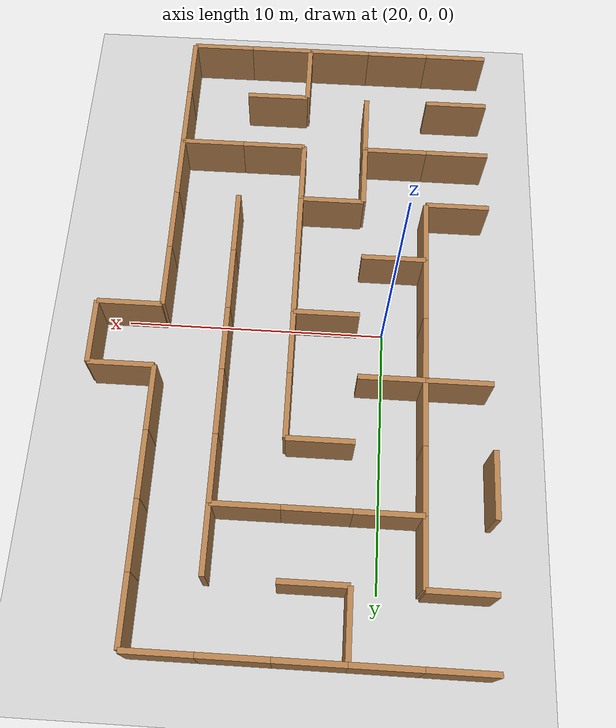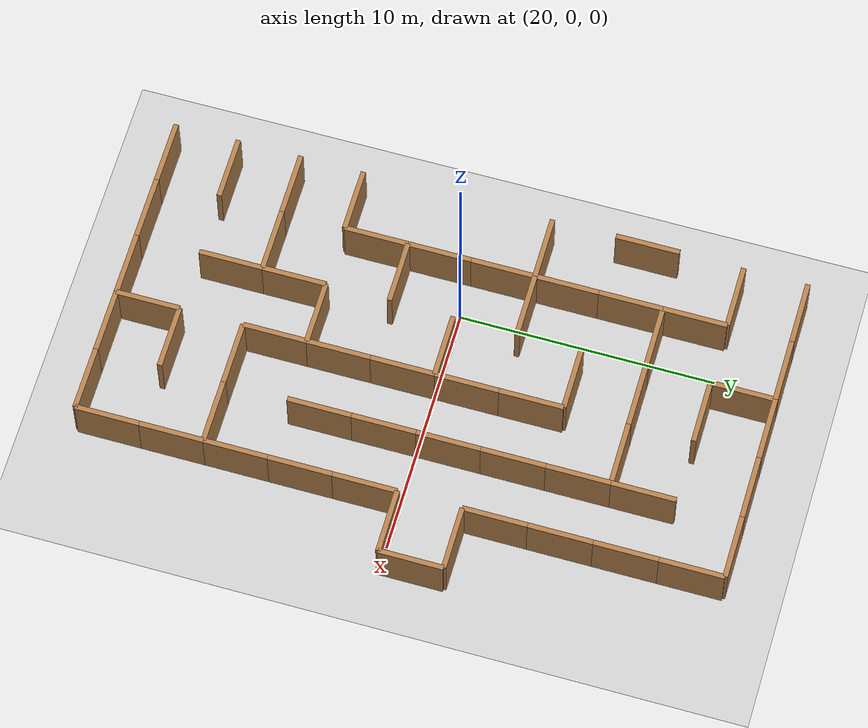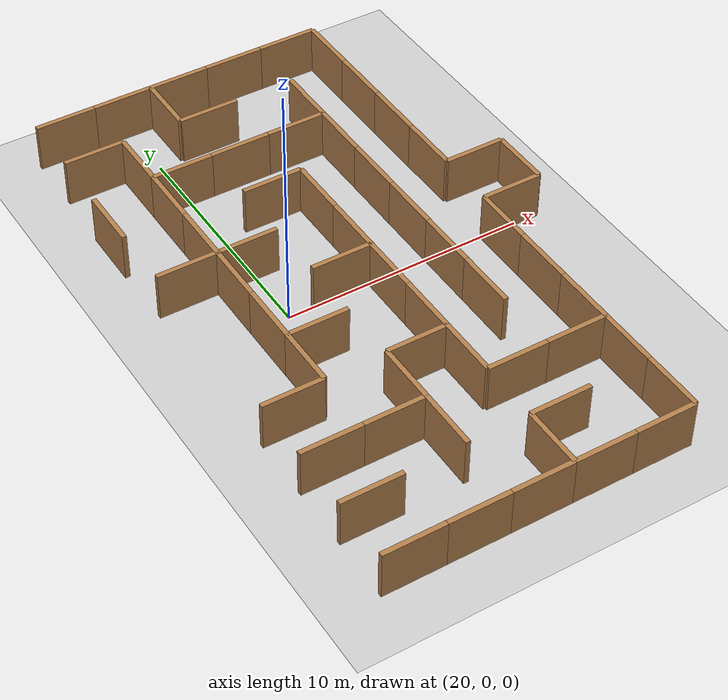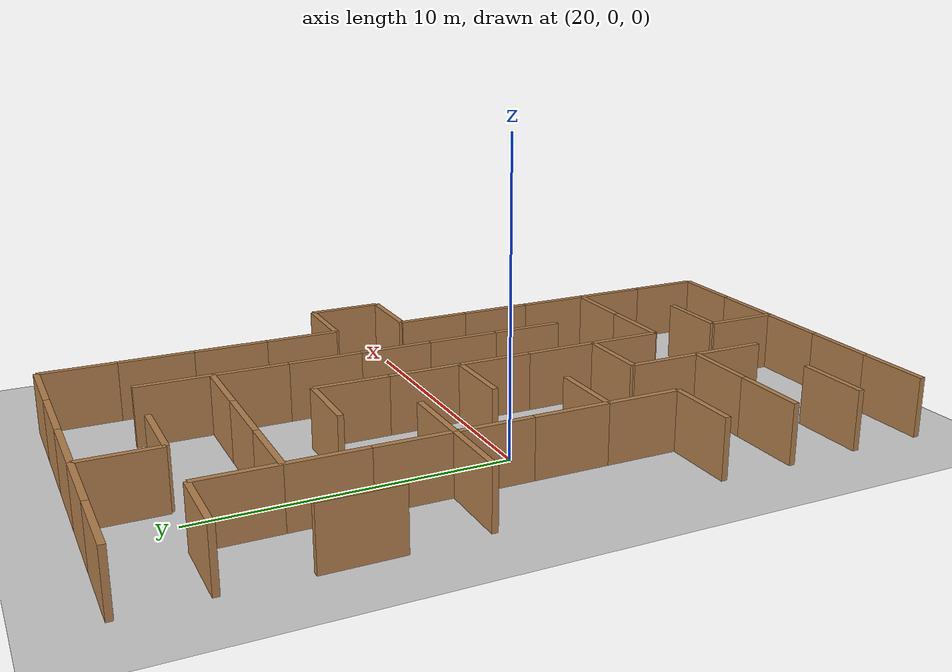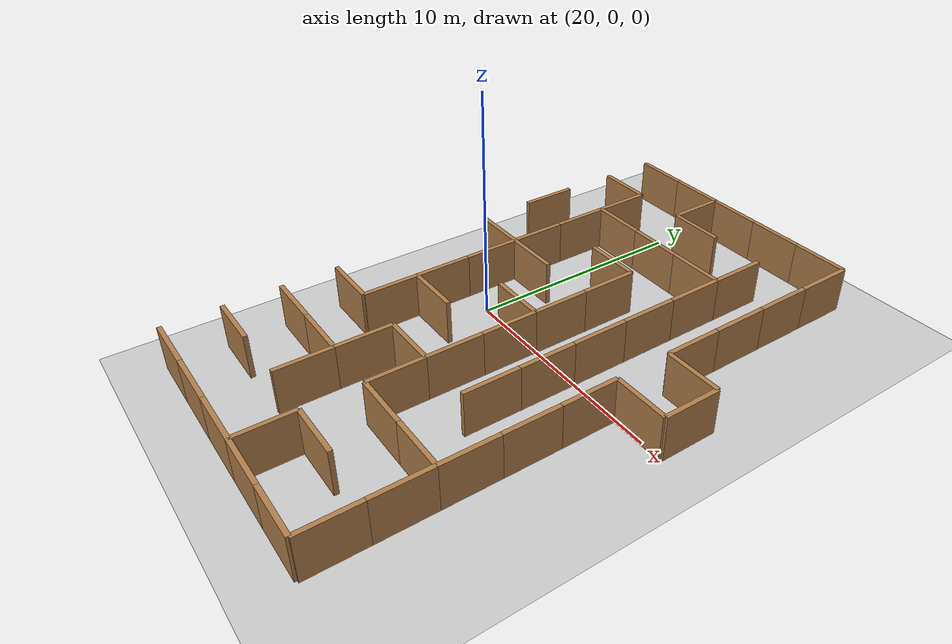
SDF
<sdf version="1.6">
 <world name="simple_maze_world">
  <include><uri>model://ground_plane</uri></include>
  <include><uri>model://sun</uri></include>
  <model name="h_wall_28">
   <static>true</static>
   <pose>16.0 6.25 1.0 0 0 0</pose>
   <link name="link">
    <collision name="c"><geometry><box><size>0.2 2.5 2.0</size></box></geometry></collision>
    <visual name="v">
     <geometry><box><size>0.2 2.5 2.0</size></box></geometry>
     <material>
      <script><uri>file://media/materials/scripts/gazebo.material</uri><name>Gazebo/Wood</name></script>
     </material>
    </visual>
   </link>
  </model>
  <model name="h_wall_29">
   <static>true</static>
   <pose>18.5 -3.75 1.0 0 0 0</pose>
   <link name="link">
    <collision name="c"><geometry><box><size>0.2 2.5 2.0</size></box></geometry></collision>
    <visual name="v">
     <geometry><box><size>0.2 2.5 2.0</size></box></geometry>
     <material>
      <script><uri>file://media/materials/scripts/gazebo.material</uri><name>Gazebo/WoodFloor</name></script>
     </material>
    </visual>
   </link>
  </model>
  <model name="h_wall_30">
   <static>true</static>
   <pose>18.5 -1.25 1.0 0 0 0</pose>
   <link name="link">
    <collision name="c"><geometry><box><size>0.2 2.5 2.0</size></box></geometry></collision>
    <visual name="v">
     <geometry><box><size>0.2 2.5 2.0</size></box></geometry>
     <material>
      <script><uri>file://media/materials/scripts/gazebo.material</uri><name>Gazebo/Wood</name></script>
     </material>
    </visual>
   </link>
  </model>
  <model name="h_wall_31">
   <static>true</static>
   <pose>18.5 1.25 1.0 0 0 0</pose>
   <link name="link">
    <collision name="c"><geometry><box><size>0.2 2.5 2.0</size></box></geometry></collision>
    <visual name="v">
     <geometry><box><size>0.2 2.5 2.0</size></box></geometry>
     <material>
      <script><uri>file://media/materials/scripts/gazebo.material</uri><name>Gazebo/WoodFloor</name></script>
     </material>
    </visual>
   </link>
  </model>
  <model name="h_wall_32">
   <static>true</static>
   <pose>18.5 3.75 1.0 0 0 0</pose>
   <link name="link">
    <collision name="c"><geometry><box><size>0.2 2.5 2.0</size></box></geometry></collision>
    <visual name="v">
     <geometry><box><size>0.2 2.5 2.0</size></box></geometry>
     <material>
      <script><uri>file://media/materials/scripts/gazebo.material</uri><name>Gazebo/Wood</name></script>
     </material>
    </visual>
   </link>
  </model>
  <model name="h_wall_33">
   <static>true</static>
   <pose>18.5 6.25 1.0 0 0 0</pose>
   <link name="link">
    <collision name="c"><geometry><box><size>0.2 2.5 2.0</size></box></geometry></collision>
    <visual name="v">
     <geometry><box><size>0.2 2.5 2.0</size></box></geometry>
     <material>
      <script><uri>file://media/materials/scripts/gazebo.material</uri><name>Gazebo/WoodFloor</name></script>
     </material>
    </visual>
   </link>
  </model>
  <model name="h_wall_34">
   <static>true</static>
   <pose>18.5 8.75 1.0 0 0 0</pose>
   <link name="link">
    <collision name="c"><geometry><box><size>0.2 2.5 2.0</size></box></geometry></collision>
    <visual name="v">
     <geometry><box><size>0.2 2.5 2.0</size></box></geometry>
     <material>
      <script><uri>file://media/materials/scripts/gazebo.material</uri><name>Gazebo/Wood</name></script>
     </material>
    </visual>
   </link>
  </model>
  <model name="h_wall_35">
   <static>true</static>
   <pose>21.0 -8.75 1.0 0 0 0</pose>
   <link name="link">
    <collision name="c"><geometry><box><size>0.2 2.5 2.0</size></box></geometry></collision>
    <visual name="v">
     <geometry><box><size>0.2 2.5 2.0</size></box></geometry>
     <material>
      <script><uri>file://media/materials/scripts/gazebo.material</uri><name>Gazebo/WoodFloor</name></script>
     </material>
    </visual>
   </link>
  </model>
  <model name="h_wall_36">
   <static>true</static>
   <pose>21.0 -6.25 1.0 0 0 0</pose>
   <link name="link">
    <collision name="c"><geometry><box><size>0.2 2.5 2.0</size></box></geometry></collision>
    <visual name="v">
     <geometry><box><size>0.2 2.5 2.0</size></box></geometry>
     <material>
      <script><uri>file://media/materials/scripts/gazebo.material</uri><name>Gazebo/Wood</name></script>
     </material>
    </visual>
   </link>
  </model>
  <model name="h_wall_37">
   <static>true</static>
   <pose>21.0 11.25 1.0 0 0 0</pose>
   <link name="link">
    <collision name="c"><geometry><box><size>0.2 2.5 2.0</size></box></geometry></collision>
    <visual name="v">
     <geometry><box><size>0.2 2.5 2.0</size></box></geometry>
     <material>
      <script><uri>file://media/materials/scripts/gazebo.material</uri><name>Gazebo/WoodFloor</name></script>
     </material>
    </visual>
   </link>
  </model>
  <model name="h_wall_38">
   <static>true</static>
   <pose>23.5 -11.25 1.0 0 0 0</pose>
   <link name="link">
    <collision name="c"><geometry><box><size>0.2 2.5 2.0</size></box></geometry></collision>
    <visual name="v">
     <geometry><box><size>0.2 2.5 2.0</size></box></geometry>
     <material>
      <script><uri>file://media/materials/scripts/gazebo.material</uri><name>Gazebo/Wood</name></script>
     </material>
    </visual>
   </link>
  </model>
  <model name="h_wall_39">
   <static>true</static>
   <pose>23.5 -6.25 1.0 0 0 0</pose>
   <link name="link">
    <collision name="c"><geometry><box><size>0.2 2.5 2.0</size></box></geometry></collision>
    <visual name="v">
     <geometry><box><size>0.2 2.5 2.0</size></box></geometry>
     <material>
      <script><uri>file://media/materials/scripts/gazebo.material</uri><name>Gazebo/WoodFloor</name></script>
     </material>
    </visual>
   </link>
  </model>
  <model name="h_wall_40">
   <static>true</static>
   <pose>23.5 -3.75 1.0 0 0 0</pose>
   <link name="link">
    <collision name="c"><geometry><box><size>0.2 2.5 2.0</size></box></geometry></collision>
    <visual name="v">
     <geometry><box><size>0.2 2.5 2.0</size></box></geometry>
     <material>
      <script><uri>file://media/materials/scripts/gazebo.material</uri><name>Gazebo/Wood</name></script>
     </material>
    </visual>
   </link>
  </model>
  <model name="h_wall_41">
   <static>true</static>
   <pose>23.5 -1.25 1.0 0 0 0</pose>
   <link name="link">
    <collision name="c"><geometry><box><size>0.2 2.5 2.0</size></box></geometry></collision>
    <visual name="v">
     <geometry><box><size>0.2 2.5 2.0</size></box></geometry>
     <material>
      <script><uri>file://media/materials/scripts/gazebo.material</uri><name>Gazebo/WoodFloor</name></script>
     </material>
    </visual>
   </link>
  </model>
  <model name="h_wall_42">
   <static>true</static>
   <pose>23.5 1.25 1.0 0 0 0</pose>
   <link name="link">
    <collision name="c"><geometry><box><size>0.2 2.5 2.0</size></box></geometry></collision>
    <visual name="v">
     <geometry><box><size>0.2 2.5 2.0</size></box></geometry>
     <material>
      <script><uri>file://media/materials/scripts/gazebo.material</uri><name>Gazebo/Wood</name></script>
     </material>
    </visual>
   </link>
  </model>
  <model name="h_wall_43">
   <static>true</static>
   <pose>23.5 3.75 1.0 0 0 0</pose>
   <link name="link">
    <collision name="c"><geometry><box><size>0.2 2.5 2.0</size></box></geometry></collision>
    <visual name="v">
     <geometry><box><size>0.2 2.5 2.0</size></box></geometry>
     <material>
      <script><uri>file://media/materials/scripts/gazebo.material</uri><name>Gazebo/WoodFloor</name></script>
     </material>
    </visual>
   </link>
  </model>
  <model name="h_wall_44">
   <static>true</static>
   <pose>26.0 -3.75 1.0 0 0 0</pose>
   <link name="link">
    <collision name="c"><geometry><box><size>0.2 2.5 2.0</size></box></geometry></collision>
    <visual name="v">
     <geometry><box><size>0.2 2.5 2.0</size></box></geometry>
     <material>
      <script><uri>file://media/materials/scripts/gazebo.material</uri><name>Gazebo/Wood</name></script>
     </material>
    </visual>
   </link>
  </model>
  <model name="h_wall_45">
   <static>true</static>
   <pose>26.0 -1.25 1.0 0 0 0</pose>
   <link name="link">
    <collision name="c"><geometry><box><size>0.2 2.5 2.0</size></box></geometry></collision>
    <visual name="v">
     <geometry><box><size>0.2 2.5 2.0</size></box></geometry>
     <material>
      <script><uri>file://media/materials/scripts/gazebo.material</uri><name>Gazebo/WoodFloor</name></script>
     </material>
    </visual>
   </link>
  </model>
  <model name="h_wall_46">
   <static>true</static>
   <pose>26.0 1.25 1.0 0 0 0</pose>
   <link name="link">
    <collision name="c"><geometry><box><size>0.2 2.5 2.0</size></box></geometry></collision>
    <visual name="v">
     <geometry><box><size>0.2 2.5 2.0</size></box></geometry>
     <material>
      <script><uri>file://media/materials/scripts/gazebo.material</uri><name>Gazebo/Wood</name></script>
     </material>
    </visual>
   </link>
  </model>
  <model name="h_wall_47">
   <static>true</static>
   <pose>26.0 3.75 1.0 0 0 0</pose>
   <link name="link">
    <collision name="c"><geometry><box><size>0.2 2.5 2.0</size></box></geometry></collision>
    <visual name="v">
     <geometry><box><size>0.2 2.5 2.0</size></box></geometry>
     <material>
      <script><uri>file://media/materials/scripts/gazebo.material</uri><name>Gazebo/WoodFloor</name></script>
     </material>
    </visual>
   </link>
  </model>
  <model name="h_wall_48">
   <static>true</static>
   <pose>26.0 6.25 1.0 0 0 0</pose>
   <link name="link">
    <collision name="c"><geometry><box><size>0.2 2.5 2.0</size></box></geometry></collision>
    <visual name="v">
     <geometry><box><size>0.2 2.5 2.0</size></box></geometry>
     <material>
      <script><uri>file://media/materials/scripts/gazebo.material</uri><name>Gazebo/Wood</name></script>
     </material>
    </visual>
   </link>
  </model>
  <model name="h_wall_49">
   <static>true</static>
   <pose>26.0 8.75 1.0 0 0 0</pose>
   <link name="link">
    <collision name="c"><geometry><box><size>0.2 2.5 2.0</size></box></geometry></collision>
    <visual name="v">
     <geometry><box><size>0.2 2.5 2.0</size></box></geometry>
     <material>
      <script><uri>file://media/materials/scripts/gazebo.material</uri><name>Gazebo/WoodFloor</name></script>
     </material>
    </visual>
   </link>
  </model>
  <model name="h_wall_50">
   <static>true</static>
   <pose>28.5 -11.25 1.0 0 0 0</pose>
   <link name="link">
    <collision name="c"><geometry><box><size>0.2 2.5 2.0</size></box></geometry></collision>
    <visual name="v">
     <geometry><box><size>0.2 2.5 2.0</size></box></geometry>
     <material>
      <script><uri>file://media/materials/scripts/gazebo.material</uri><name>Gazebo/Wood</name></script>
     </material>
    </visual>
   </link>
  </model>
  <model name="h_wall_51">
   <static>true</static>
   <pose>28.5 -8.75 1.0 0 0 0</pose>
   <link name="link">
    <collision name="c"><geometry><box><size>0.2 2.5 2.0</size></box></geometry></collision>
    <visual name="v">
     <geometry><box><size>0.2 2.5 2.0</size></box></geometry>
     <material>
      <script><uri>file://media/materials/scripts/gazebo.material</uri><name>Gazebo/WoodFloor</name></script>
     </material>
    </visual>
   </link>
  </model>
  <model name="h_wall_52">
   <static>true</static>
   <pose>28.5 -6.25 1.0 0 0 0</pose>
   <link name="link">
    <collision name="c"><geometry><box><size>0.2 2.5 2.0</size></box></geometry></collision>
    <visual name="v">
     <geometry><box><size>0.2 2.5 2.0</size></box></geometry>
     <material>
      <script><uri>file://media/materials/scripts/gazebo.material</uri><name>Gazebo/Wood</name></script>
     </material>
    </visual>
   </link>
  </model>
  <model name="h_wall_53">
   <static>true</static>
   <pose>28.5 -3.75 1.0 0 0 0</pose>
   <link name="link">
    <collision name="c"><geometry><box><size>0.2 2.5 2.0</size></box></geometry></collision>
    <visual name="v">
     <geometry><box><size>0.2 2.5 2.0</size></box></geometry>
     <material>
      <script><uri>file://media/materials/scripts/gazebo.material</uri><name>Gazebo/WoodFloor</name></script>
     </material>
    </visual>
   </link>
  </model>
  <model name="h_wall_54">
   <static>true</static>
   <pose>28.5 -1.25 1.0 0 0 0</pose>
   <link name="link">
    <collision name="c"><geometry><box><size>0.2 2.5 2.0</size></box></geometry></collision>
    <visual name="v">
     <geometry><box><size>0.2 2.5 2.0</size></box></geometry>
     <material>
      <script><uri>file://media/materials/scripts/gazebo.material</uri><name>Gazebo/Wood</name></script>
     </material>
    </visual>
   </link>
  </model>
  <model name="h_wall_55">
   <static>true</static>
   <pose>28.5 3.75 1.0 0 0 0</pose>
   <link name="link">
    <collision name="c"><geometry><box><size>0.2 2.5 2.0</size></box></geometry></collision>
    <visual name="v">
     <geometry><box><size>0.2 2.5 2.0</size></box></geometry>
     <material>
      <script><uri>file://media/materials/scripts/gazebo.material</uri><name>Gazebo/WoodFloor</name></script>
     </material>
    </visual>
   </link>
  </model>
  <model name="h_wall_56">
   <static>true</static>
   <pose>28.5 6.25 1.0 0 0 0</pose>
   <link name="link">
    <collision name="c"><geometry><box><size>0.2 2.5 2.0</size></box></geometry></collision>
    <visual name="v">
     <geometry><box><size>0.2 2.5 2.0</size></box></geometry>
     <material>
      <script><uri>file://media/materials/scripts/gazebo.material</uri><name>Gazebo/Wood</name></script>
     </material>
    </visual>
   </link>
  </model>
  <model name="h_wall_57">
   <static>true</static>
   <pose>28.5 8.75 1.0 0 0 0</pose>
   <link name="link">
    <collision name="c"><geometry><box><size>0.2 2.5 2.0</size></box></geometry></collision>
    <visual name="v">
     <geometry><box><size>0.2 2.5 2.0</size></box></geometry>
     <material>
      <script><uri>file://media/materials/scripts/gazebo.material</uri><name>Gazebo/WoodFloor</name></script>
     </material>
    </visual>
   </link>
  </model>
  <model name="h_wall_58">
   <static>true</static>
   <pose>28.5 11.25 1.0 0 0 0</pose>
   <link name="link">
    <collision name="c"><geometry><box><size>0.2 2.5 2.0</size></box></geometry></collision>
    <visual name="v">
     <geometry><box><size>0.2 2.5 2.0</size></box></geometry>
     <material>
      <script><uri>file://media/materials/scripts/gazebo.material</uri><name>Gazebo/Wood</name></script>
     </material>
    </visual>
   </link>
  </model>
  <model name="v_wall_91">
   <static>true</static>
   <pose>17.25 -12.5 1.0 0 0 0</pose>
   <link name="link">
    <collision name="c"><geometry><box><size>2.5 0.2 2.0</size></box></geometry></collision>
    <visual name="v">
     <geometry><box><size>2.5 0.2 2.0</size></box></geometry>
     <material>
      <script><uri>file://media/materials/scripts/gazebo.material</uri><name>Gazebo/WoodFloor</name></script>
     </material>
    </visual>
   </link>
  </model>
  <model name="v_wall_92">
   <static>true</static>
   <pose>17.25 -10.0 1.0 0 0 0</pose>
   <link name="link">
    <collision name="c"><geometry><box><size>2.5 0.2 2.0</size></box></geometry></collision>
    <visual name="v">
     <geometry><box><size>2.5 0.2 2.0</size></box></geometry>
     <material>
      <script><uri>file://media/materials/scripts/gazebo.material</uri><name>Gazebo/Wood</name></script>
     </material>
    </visual>
   </link>
  </model>
  <model name="v_wall_93">
   <static>true</static>
   <pose>17.25 -7.5 1.0 0 0 0</pose>
   <link name="link">
    <collision name="c"><geometry><box><size>2.5 0.2 2.0</size></box></geometry></collision>
    <visual name="v">
     <geometry><box><size>2.5 0.2 2.0</size></box></geometry>
     <material>
      <script><uri>file://media/materials/scripts/gazebo.material</uri><name>Gazebo/WoodFloor</name></script>
     </material>
    </visual>
   </link>
  </model>
  <model name="v_wall_94">
   <static>true</static>
   <pose>17.25 -5.0 1.0 0 0 0</pose>
   <link name="link">
    <collision name="c"><geometry><box><size>2.5 0.2 2.0</size></box></geometry></collision>
    <visual name="v">
     <geometry><box><size>2.5 0.2 2.0</size></box></geometry>
     <material>
      <script><uri>file://media/materials/scripts/gazebo.material</uri><name>Gazebo/Wood</name></script>
     </material>
    </visual>
   </link>
  </model>
  <model name="v_wall_95">
   <static>true</static>
   <pose>17.25 2.5 1.0 0 0 0</pose>
   <link name="link">
    <collision name="c"><geometry><box><size>2.5 0.2 2.0</size></box></geometry></collision>
    <visual name="v">
     <geometry><box><size>2.5 0.2 2.0</size></box></geometry>
     <material>
      <script><uri>file://media/materials/scripts/gazebo.material</uri><name>Gazebo/WoodFloor</name></script>
     </material>
    </visual>
   </link>
  </model>
  <model name="v_wall_96">
   <static>true</static>
   <pose>17.25 10.0 1.0 0 0 0</pose>
   <link name="link">
    <collision name="c"><geometry><box><size>2.5 0.2 2.0</size></box></geometry></collision>
    <visual name="v">
     <geometry><box><size>2.5 0.2 2.0</size></box></geometry>
     <material>
      <script><uri>file://media/materials/scripts/gazebo.material</uri><name>Gazebo/Wood</name></script>
     </material>
    </visual>
   </link>
  </model>
  <model name="v_wall_97">
   <static>true</static>
   <pose>17.25 12.5 1.0 0 0 0</pose>
   <link name="link">
    <collision name="c"><geometry><box><size>2.5 0.2 2.0</size></box></geometry></collision>
    <visual name="v">
     <geometry><box><size>2.5 0.2 2.0</size></box></geometry>
     <material>
      <script><uri>file://media/materials/scripts/gazebo.material</uri><name>Gazebo/WoodFloor</name></script>
     </material>
    </visual>
   </link>
  </model>
  <model name="v_wall_98">
   <static>true</static>
   <pose>19.75 -12.5 1.0 0 0 0</pose>
   <link name="link">
    <collision name="c"><geometry><box><size>2.5 0.2 2.0</size></box></geometry></collision>
    <visual name="v">
     <geometry><box><size>2.5 0.2 2.0</size></box></geometry>
     <material>
      <script><uri>file://media/materials/scripts/gazebo.material</uri><name>Gazebo/Wood</name></script>
     </material>
    </visual>
   </link>
  </model>
  <model name="v_wall_99">
   <static>true</static>
   <pose>19.75 -7.5 1.0 0 0 0</pose>
   <link name="link">
    <collision name="c"><geometry><box><size>2.5 0.2 2.0</size></box></geometry></collision>
    <visual name="v">
     <geometry><box><size>2.5 0.2 2.0</size></box></geometry>
     <material>
      <script><uri>file://media/materials/scripts/gazebo.material</uri><name>Gazebo/WoodFloor</name></script>
     </material>
    </visual>
   </link>
  </model>
  <model name="v_wall_100">
   <static>true</static>
   <pose>19.75 -2.5 1.0 0 0 0</pose>
   <link name="link">
    <collision name="c"><geometry><box><size>2.5 0.2 2.0</size></box></geometry></collision>
    <visual name="v">
     <geometry><box><size>2.5 0.2 2.0</size></box></geometry>
     <material>
      <script><uri>file://media/materials/scripts/gazebo.material</uri><name>Gazebo/Wood</name></script>
     </material>
    </visual>
   </link>
  </model>
  <model name="v_wall_101">
   <static>true</static>
   <pose>19.75 2.5 1.0 0 0 0</pose>
   <link name="link">
    <collision name="c"><geometry><box><size>2.5 0.2 2.0</size></box></geometry></collision>
    <visual name="v">
     <geometry><box><size>2.5 0.2 2.0</size></box></geometry>
     <material>
      <script><uri>file://media/materials/scripts/gazebo.material</uri><name>Gazebo/WoodFloor</name></script>
     </material>
    </visual>
   </link>
  </model>
  <model name="v_wall_102">
   <static>true</static>
   <pose>19.75 7.5 1.0 0 0 0</pose>
   <link name="link">
    <collision name="c"><geometry><box><size>2.5 0.2 2.0</size></box></geometry></collision>
    <visual name="v">
     <geometry><box><size>2.5 0.2 2.0</size></box></geometry>
     <material>
      <script><uri>file://media/materials/scripts/gazebo.material</uri><name>Gazebo/Wood</name></script>
     </material>
    </visual>
   </link>
  </model>
  <model name="v_wall_103">
   <static>true</static>
   <pose>19.75 12.5 1.0 0 0 0</pose>
   <link name="link">
    <collision name="c"><geometry><box><size>2.5 0.2 2.0</size></box></geometry></collision>
    <visual name="v">
     <geometry><box><size>2.5 0.2 2.0</size></box></geometry>
     <material>
      <script><uri>file://media/materials/scripts/gazebo.material</uri><name>Gazebo/WoodFloor</name></script>
     </material>
    </visual>
   </link>
  </model>
  <model name="v_wall_104">
   <static>true</static>
   <pose>22.25 -12.5 1.0 0 0 0</pose>
   <link name="link">
    <collision name="c"><geometry><box><size>2.5 0.2 2.0</size></box></geometry></collision>
    <visual name="v">
     <geometry><box><size>2.5 0.2 2.0</size></box></geometry>
     <material>
      <script><uri>file://media/materials/scripts/gazebo.material</uri><name>Gazebo/Wood</name></script>
     </material>
    </visual>
   </link>
  </model>
  <model name="v_wall_105">
   <static>true</static>
   <pose>22.25 -5.0 1.0 0 0 0</pose>
   <link name="link">
    <collision name="c"><geometry><box><size>2.5 0.2 2.0</size></box></geometry></collision>
    <visual name="v">
     <geometry><box><size>2.5 0.2 2.0</size></box></geometry>
     <material>
      <script><uri>file://media/materials/scripts/gazebo.material</uri><name>Gazebo/WoodFloor</name></script>
     </material>
    </visual>
   </link>
  </model>
  <model name="v_wall_106">
   <static>true</static>
   <pose>22.25 0.0 1.0 0 0 0</pose>
   <link name="link">
    <collision name="c"><geometry><box><size>2.5 0.2 2.0</size></box></geometry></collision>
    <visual name="v">
     <geometry><box><size>2.5 0.2 2.0</size></box></geometry>
     <material>
      <script><uri>file://media/materials/scripts/gazebo.material</uri><name>Gazebo/Wood</name></script>
     </material>
    </visual>
   </link>
  </model>
  <model name="v_wall_107">
   <static>true</static>
   <pose>22.25 5.0 1.0 0 0 0</pose>
   <link name="link">
    <collision name="c"><geometry><box><size>2.5 0.2 2.0</size></box></geometry></collision>
    <visual name="v">
     <geometry><box><size>2.5 0.2 2.0</size></box></geometry>
     <material>
      <script><uri>file://media/materials/scripts/gazebo.material</uri><name>Gazebo/WoodFloor</name></script>
     </material>
    </visual>
   </link>
  </model>
  <model name="v_wall_108">
   <static>true</static>
   <pose>22.25 7.5 1.0 0 0 0</pose>
   <link name="link">
    <collision name="c"><geometry><box><size>2.5 0.2 2.0</size></box></geometry></collision>
    <visual name="v">
     <geometry><box><size>2.5 0.2 2.0</size></box></geometry>
     <material>
      <script><uri>file://media/materials/scripts/gazebo.material</uri><name>Gazebo/Wood</name></script>
     </material>
    </visual>
   </link>
  </model>
  <model name="v_wall_109">
   <static>true</static>
   <pose>22.25 10.0 1.0 0 0 0</pose>
   <link name="link">
    <collision name="c"><geometry><box><size>2.5 0.2 2.0</size></box></geometry></collision>
    <visual name="v">
     <geometry><box><size>2.5 0.2 2.0</size></box></geometry>
     <material>
      <script><uri>file://media/materials/scripts/gazebo.material</uri><name>Gazebo/WoodFloor</name></script>
     </material>
    </visual>
   </link>
  </model>
  <model name="v_wall_110">
   <static>true</static>
   <pose>22.25 12.5 1.0 0 0 0</pose>
   <link name="link">
    <collision name="c"><geometry><box><size>2.5 0.2 2.0</size></box></geometry></collision>
    <visual name="v">
     <geometry><box><size>2.5 0.2 2.0</size></box></geometry>
     <material>
      <script><uri>file://media/materials/scripts/gazebo.material</uri><name>Gazebo/Wood</name></script>
     </material>
    </visual>
   </link>
  </model>
  <model name="v_wall_111">
   <static>true</static>
   <pose>24.75 -12.5 1.0 0 0 0</pose>
   <link name="link">
    <collision name="c"><geometry><box><size>2.5 0.2 2.0</size></box></geometry></collision>
    <visual name="v">
     <geometry><box><size>2.5 0.2 2.0</size></box></geometry>
     <material>
      <script><uri>file://media/materials/scripts/gazebo.material</uri><name>Gazebo/WoodFloor</name></script>
     </material>
    </visual>
   </link>
  </model>
  <model name="v_wall_112">
   <static>true</static>
   <pose>24.75 -10.0 1.0 0 0 0</pose>
   <link name="link">
    <collision name="c"><geometry><box><size>2.5 0.2 2.0</size></box></geometry></collision>
    <visual name="v">
     <geometry><box><size>2.5 0.2 2.0</size></box></geometry>
     <material>
      <script><uri>file://media/materials/scripts/gazebo.material</uri><name>Gazebo/Wood</name></script>
     </material>
    </visual>
   </link>
  </model>
  <model name="v_wall_113">
   <static>true</static>
   <pose>24.75 -7.5 1.0 0 0 0</pose>
   <link name="link">
    <collision name="c"><geometry><box><size>2.5 0.2 2.0</size></box></geometry></collision>
    <visual name="v">
     <geometry><box><size>2.5 0.2 2.0</size></box></geometry>
     <material>
      <script><uri>file://media/materials/scripts/gazebo.material</uri><name>Gazebo/WoodFloor</name></script>
     </material>
    </visual>
   </link>
  </model>
  <model name="v_wall_114">
   <static>true</static>
   <pose>24.75 7.5 1.0 0 0 0</pose>
   <link name="link">
    <collision name="c"><geometry><box><size>2.5 0.2 2.0</size></box></geometry></collision>
    <visual name="v">
     <geometry><box><size>2.5 0.2 2.0</size></box></geometry>
     <material>
      <script><uri>file://media/materials/scripts/gazebo.material</uri><name>Gazebo/Wood</name></script>
     </material>
    </visual>
   </link>
  </model>
  <model name="v_wall_115">
   <static>true</static>
   <pose>24.75 12.5 1.0 0 0 0</pose>
   <link name="link">
    <collision name="c"><geometry><box><size>2.5 0.2 2.0</size></box></geometry></collision>
    <visual name="v">
     <geometry><box><size>2.5 0.2 2.0</size></box></geometry>
     <material>
      <script><uri>file://media/materials/scripts/gazebo.material</uri><name>Gazebo/WoodFloor</name></script>
     </material>
    </visual>
   </link>
  </model>
  <model name="v_wall_116">
   <static>true</static>
   <pose>27.25 -12.5 1.0 0 0 0</pose>
   <link name="link">
    <collision name="c"><geometry><box><size>2.5 0.2 2.0</size></box></geometry></collision>
    <visual name="v">
     <geometry><box><size>2.5 0.2 2.0</size></box></geometry>
     <material>
      <script><uri>file://media/materials/scripts/gazebo.material</uri><name>Gazebo/Wood</name></script>
     </material>
    </visual>
   </link>
  </model>
  <model name="v_wall_117">
   <static>true</static>
   <pose>27.25 -7.5 1.0 0 0 0</pose>
   <link name="link">
    <collision name="c"><geometry><box><size>2.5 0.2 2.0</size></box></geometry></collision>
    <visual name="v">
     <geometry><box><size>2.5 0.2 2.0</size></box></geometry>
     <material>
      <script><uri>file://media/materials/scripts/gazebo.material</uri><name>Gazebo/WoodFloor</name></script>
     </material>
    </visual>
   </link>
  </model>
  <model name="v_wall_118">
   <static>true</static>
   <pose>27.25 12.5 1.0 0 0 0</pose>
   <link name="link">
    <collision name="c"><geometry><box><size>2.5 0.2 2.0</size></box></geometry></collision>
    <visual name="v">
     <geometry><box><size>2.5 0.2 2.0</size></box></geometry>
     <material>
      <script><uri>file://media/materials/scripts/gazebo.material</uri><name>Gazebo/Wood</name></script>
     </material>
    </visual>
   </link>
  </model>
  <model name="exit_left">
   <static>true</static>
   <pose>29.75 0.0 1.0 0 0 0</pose>
   <link name="link">
    <collision name="c"><geometry><box><size>2.5 0.2 2.0</size></box></geometry></collision>
    <visual name="v">
     <geometry><box><size>2.5 0.2 2.0</size></box></geometry>
     <material>
      <script><uri>file://media/materials/scripts/gazebo.material</uri><name>Gazebo/Wood</name></script>
     </material>
    </visual>
   </link>
  </model>
  <model name="exit_right">
   <static>true</static>
   <pose>29.75 2.5 1.0 0 0 0</pose>
   <link name="link">
    <collision name="c"><geometry><box><size>2.5 0.2 2.0</size></box></geometry></collision>
    <visual name="v">
     <geometry><box><size>2.5 0.2 2.0</size></box></geometry>
     <material>
      <script><uri>file://media/materials/scripts/gazebo.material</uri><name>Gazebo/Wood</name></script>
     </material>
    </visual>
   </link>
  </model>
  <model name="exit_back">
   <static>true</static>
   <pose>31.0 1.25 1.0 0 0 0</pose>
   <link name="link">
    <collision name="c"><geometry><box><size>0.2 2.5 2.0</size></box></geometry></collision>
    <visual name="v">
     <geometry><box><size>0.2 2.5 2.0</size></box></geometry>
     <material>
      <script><uri>file://media/materials/scripts/gazebo.material</uri><name>Gazebo/Wood</name></script>
     </material>
    </visual>
   </link>
  </model>
 </world>
</sdf>
